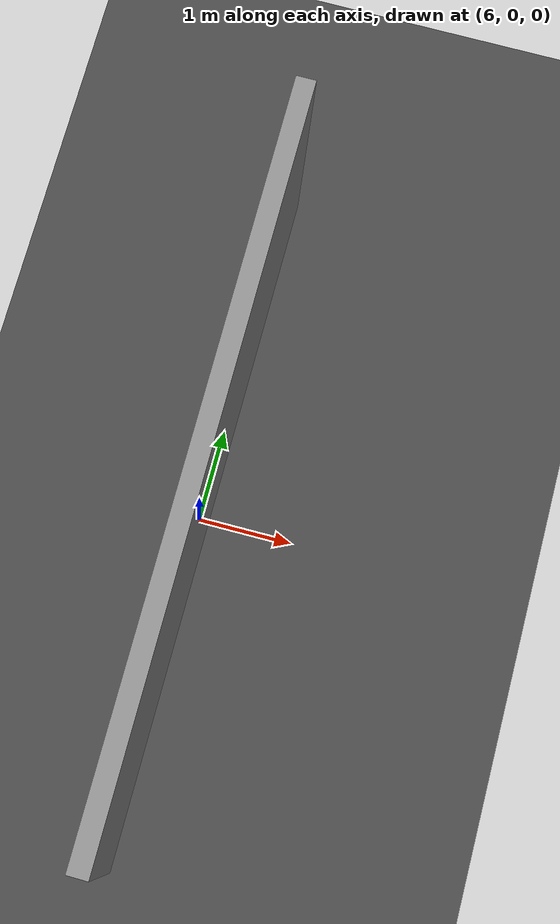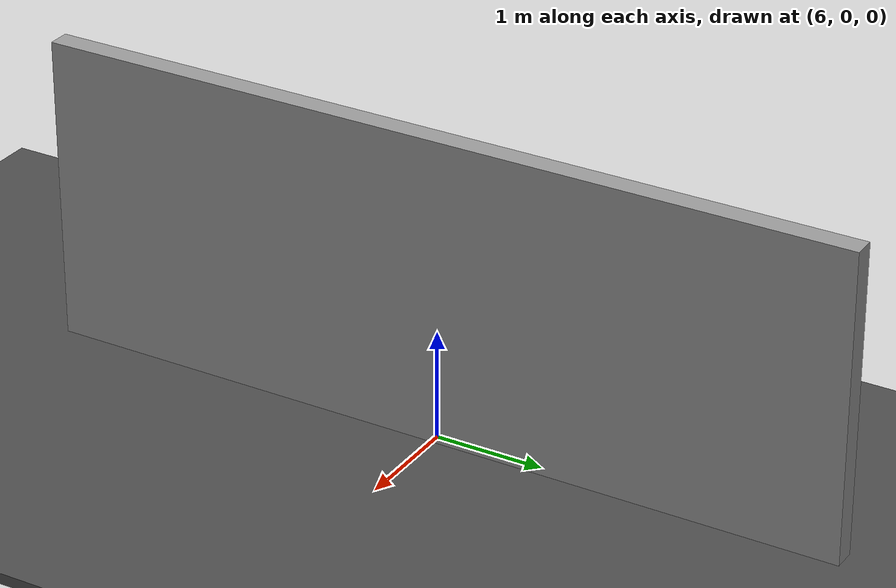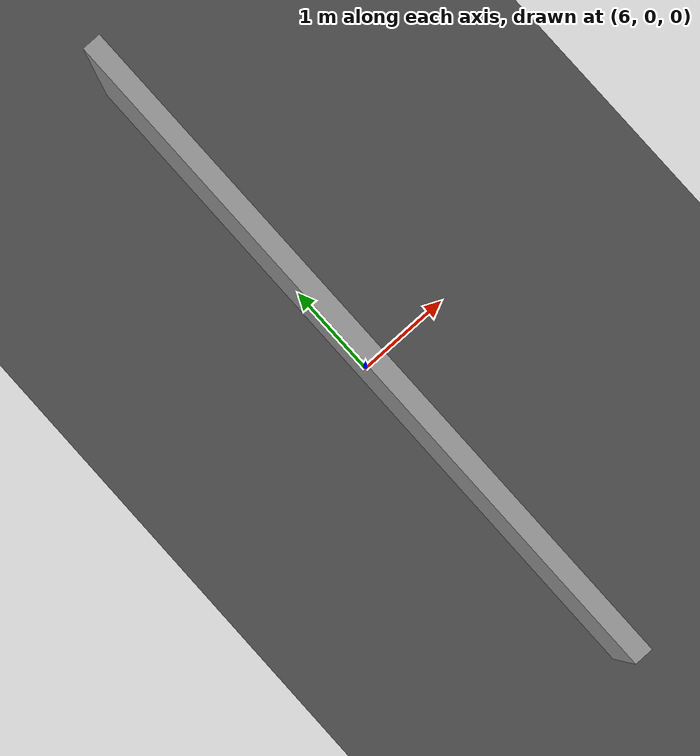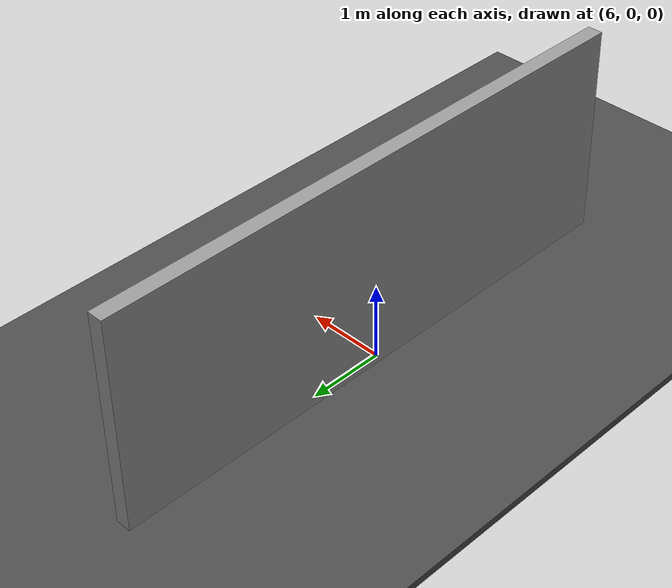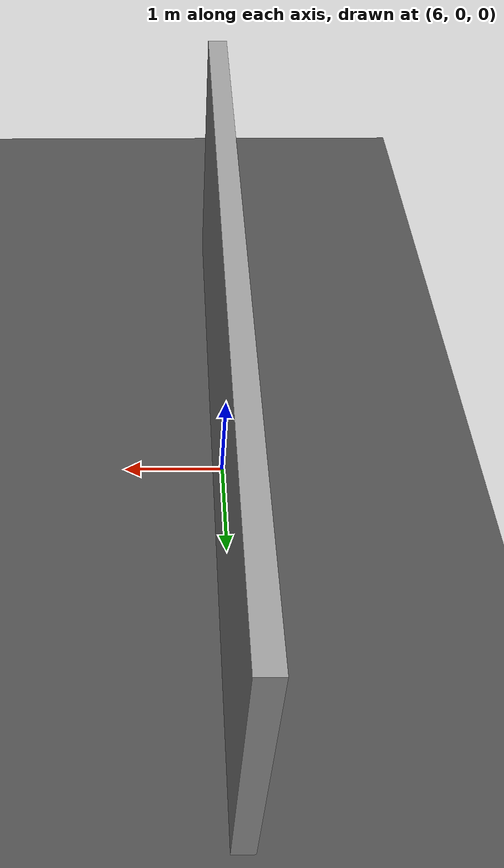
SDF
<sdf version="1.6">
 <world name="default">
  <light name="sun" type="directional">
   <pose>0 0 10 0 -0 0</pose>
   <diffuse>0.8 0.8 0.8 1</diffuse>
   <specular>0.1 0.1 0.1 1</specular>
   <attenuation>
    <range>1000</range>
    <constant>0.9</constant>
    <linear>0.01</linear>
    <quadratic>0.001</quadratic>
   </attenuation>
   <direction>-0.5 0.5 -1</direction>
  </light>
  <gravity>0 0 -9.8</gravity>
  <magnetic_field>6e-06 2.3e-05 -4.2e-05</magnetic_field>
  <atmosphere type="adiabatic"/>
  <physics name="default_physics" default="0" type="ode">
   <max_step_size>0.001</max_step_size>
   <real_time_factor>1</real_time_factor>
   <real_time_update_rate>1000</real_time_update_rate>
  </physics>
  <scene><ambient>0.4 0.4 0.4 1</ambient><background>0.7 0.7 0.7 1</background><shadows>1</shadows></scene>
  <spherical_coordinates>
   <surface_model>EARTH_WGS84</surface_model>
   <latitude_deg>0</latitude_deg>
   <longitude_deg>0</longitude_deg>
   <elevation>0</elevation>
   <heading_deg>0</heading_deg>
  </spherical_coordinates>
  <model name="asphalt_plane">
   <static>1</static>
   <link name="link">
    <collision name="collision"><geometry><box><size>20 20 0.1</size></box></geometry></collision>
    <visual name="visual">
     <cast_shadows>0</cast_shadows>
     <geometry><box><size>20 20 0.1</size></box></geometry>
     <material>
      <script>
       <uri>model://asphalt_plane/materials/scripts</uri>
       <uri>model://asphalt_plane/materials/textures</uri>
       <name>vrc/asphalt</name>
      </script>
     </material>
    </visual>
   </link>
   <pose>0 0 -0.05 0 -0 0</pose>
  </model>
  <model name="grey_wall">
   <static>1</static>
   <link name="link">
    <pose>0 0 1.4 0 -0 0</pose>
    <collision name="collision"><geometry><box><size>7.5 0.2 2.8</size></box></geometry></collision>
    <visual name="visual">
     <cast_shadows>0</cast_shadows>
     <geometry><box><size>7.5 0.2 2.8</size></box></geometry>
     <material>
      <script>
       <uri>model://grey_wall/materials/scripts</uri>
       <uri>model://grey_wall/materials/textures</uri>
       <name>vrc/grey_wall</name>
      </script>
     </material>
    </visual>
   </link>
   <pose>6 0 0 0 -0 1.57</pose>
  </model>
 </world>
</sdf>
